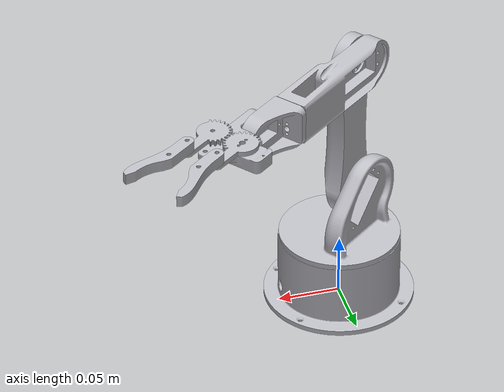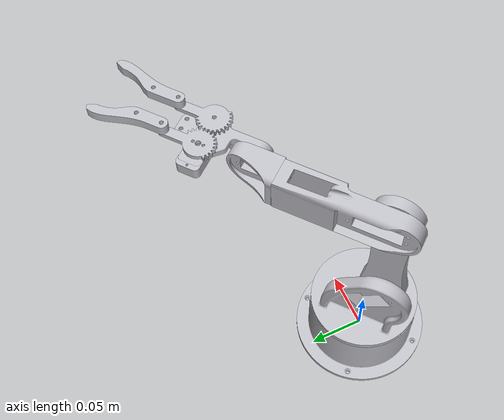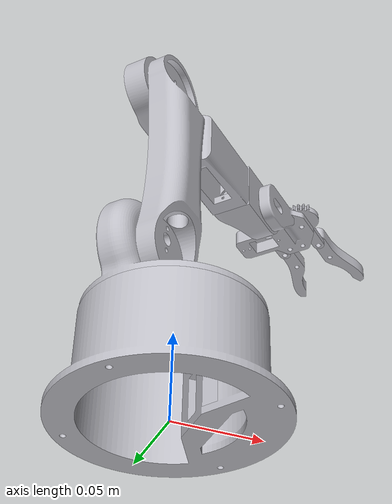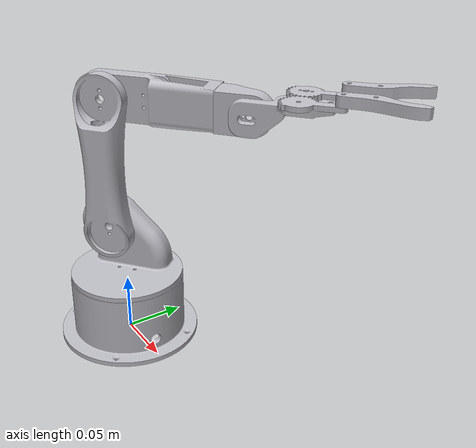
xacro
<?xml version="1.0"?>
<robot xmlns:xacro="http://www.ros.org/wiki/xacro" name="Robotic">
    <xacro:arg name="initial_positions_file" default="initial_positions.yaml" />

    <!-- Import Robotic urdf file -->
    <xacro:include filename="$(find Robotic_description)/urdf/Robotic.xacro" />

    <!-- Import control_xacro -->
    <xacro:include filename="Robotic.ros2_control.xacro" />

    <xacro:Robotic_ros2_control name="FakeSystem" initial_positions_file="$(arg initial_positions_file)"/>

</robot>

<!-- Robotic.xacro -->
<robot name="Robotic" xmlns:xacro="http://www.ros.org/wiki/xacro">

  <xacro:include filename="$(find Robotic_description)/urdf/materials.xacro" />
  <xacro:include filename="$(find Robotic_description)/urdf/Robotic.ros2control" />
  <xacro:include filename="$(find Robotic_description)/urdf/Robotic.gazebo" />

  <!-- ================= BASE ================= -->

  <link name="base_link">
    <inertial>
      <origin xyz="0.00019608322687622598 4.7129774473542457e-17 0.022210240717664115" rpy="0 0 0"/>
      <mass value="0.7043648518485409"/>
      <inertia ixx="0.000939" iyy="0.001008" izz="0.001523" ixy="0.0" iyz="0.0" ixz="3e-05"/>
    </inertial>

    <visual>
      <origin xyz="0 0 0" rpy="0 0 0"/>
      <geometry>
        <mesh filename="file://$(find Robotic_description)/meshes/base_link.stl"
              scale="0.001 0.001 0.001"/>
      </geometry>
      <material name="silver"/>
    </visual>

    <collision>
      <origin xyz="0 0 0" rpy="0 0 0"/>
      <geometry>
        <mesh filename="file://$(find Robotic_description)/meshes/base_link.stl"
              scale="0.001 0.001 0.001"/>
      </geometry>
    </collision>
  </link>

  <!-- ================= WAIST ================= -->

  <link name="waist_link__1">
    <inertial>
      <origin xyz="-0.008232942462193962 0.002680368030724079 0.01863951167643068" rpy="0 0 0"/>
      <mass value="0.5291367202831168"/>
      <inertia ixx="0.000393" iyy="0.000443" izz="0.000438"
               ixy="-6.2e-05" iyz="8e-06" ixz="8.1e-05"/>
    </inertial>

    <visual>
      <origin xyz="-0.0 -0.0 -0.056" rpy="0 0 0"/>
      <geometry>
        <mesh filename="file://$(find Robotic_description)/meshes/waist_link__1.stl"
              scale="0.001 0.001 0.001"/>
      </geometry>
      <material name="silver"/>
    </visual>

    <collision>
      <origin xyz="-0.0 -0.0 -0.056" rpy="0 0 0"/>
      <geometry>
        <mesh filename="file://$(find Robotic_description)/meshes/waist_link__1.stl"
              scale="0.001 0.001 0.001"/>
      </geometry>
    </collision>
  </link>

  <!-- ================= SHOULDER ================= -->

  <link name="shoulder_link_1">
    <inertial>
      <origin xyz="0.004976182562488834 -0.006174852032409734 0.05286353505809295" rpy="0 0 0"/>
      <mass value="0.4764598948036751"/>
      <inertia ixx="0.000787" iyy="0.000795" izz="7e-05"
               ixy="-1.8e-05" iyz="-0.0" ixz="0.0"/>
    </inertial>

    <visual>
      <origin xyz="0.013341 0.005613 -0.10028" rpy="0 0 0"/>
      <geometry>
        <mesh filename="file://$(find Robotic_description)/meshes/shoulder_link_1.stl"
              scale="0.001 0.001 0.001"/>
      </geometry>
      <material name="silver"/>
    </visual>

    <collision>
      <origin xyz="0.013341 0.005613 -0.10028" rpy="0 0 0"/>
      <geometry>
        <mesh filename="file://$(find Robotic_description)/meshes/shoulder_link_1.stl"
              scale="0.001 0.001 0.001"/>
      </geometry>
    </collision>
  </link>

  <!-- ================= ELBOW ================= -->

  <link name="elbow_link_1">
    <inertial>
      <origin xyz="0.03123491762487425 0.03246565125111838 2.8290162693428433e-05" rpy="0 0 0"/>
      <mass value="0.3793018917487677"/>
      <inertia ixx="0.000216" iyy="0.000302" izz="0.000423"
               ixy="-0.000185" iyz="-0.0" ixz="-0.0"/>
    </inertial>

    <visual>
      <origin xyz="0.013341 0.005613 -0.21303" rpy="0 0 0"/>
      <geometry>
        <mesh filename="file://$(find Robotic_description)/meshes/elbow_link_1.stl"
              scale="0.001 0.001 0.001"/>
      </geometry>
      <material name="silver"/>
    </visual>

    <collision>
      <origin xyz="0.013341 0.005613 -0.21303" rpy="0 0 0"/>
      <geometry>
        <mesh filename="file://$(find Robotic_description)/meshes/elbow_link_1.stl"
              scale="0.001 0.001 0.001"/>
      </geometry>
    </collision>
  </link>

  <!-- ================= WRIST ROLL ================= -->

  <link name="wrist_roll_link_1">
    <inertial>
      <origin xyz="0.01723922000105483 0.006875273485043666 0.005029953172644069"
              rpy="0 0 0"/>
      <mass value="0.11809299128853043"/>
      <inertia ixx="2.1e-05" iyy="3.3e-05" izz="2.8e-05"
               ixy="-8e-06" iyz="0.0" ixz="0.0"/>
    </inertial>

    <visual>
      <origin xyz="-0.056985 -0.058121 -0.20773" rpy="0 0 0"/>
      <geometry>
        <mesh filename="file://$(find Robotic_description)/meshes/wrist_roll_link_1.stl"
              scale="0.001 0.001 0.001"/>
      </geometry>
      <material name="silver"/>
    </visual>

    <collision>
      <origin xyz="-0.056985 -0.058121 -0.20773" rpy="0 0 0"/>
      <geometry>
        <mesh filename="file://$(find Robotic_description)/meshes/wrist_roll_link_1.stl"
              scale="0.001 0.001 0.001"/>
      </geometry>
    </collision>
  </link>

  <!-- ================= WRIST PITCH ================= -->

  <link name="wrist_pitch_link_1">
    <inertial>
      <origin xyz="0.01679443820323824 0.02030656843440662 0.006660009250878979"
              rpy="0 0 0"/>
      <mass value="0.12525982922438417"/>
      <inertia ixx="5.3e-05" iyy="3e-05" izz="7.1e-05"
               ixy="-1.6e-05" iyz="-9e-06" ixz="-6e-06"/>
    </inertial>

    <visual>
      <origin xyz="-0.087581 -0.064777 -0.212687" rpy="0 0 0"/>
      <geometry>
        <mesh filename="file://$(find Robotic_description)/meshes/wrist_pitch_link_1.stl"
              scale="0.001 0.001 0.001"/>
      </geometry>
      <material name="silver"/>
    </visual>

    <collision>
      <origin xyz="-0.087581 -0.064777 -0.212687" rpy="0 0 0"/>
      <geometry>
        <mesh filename="file://$(find Robotic_description)/meshes/wrist_pitch_link_1.stl"
              scale="0.001 0.001 0.001"/>
      </geometry>
    </collision>
  </link>

  <!-- ================= GRIPPER GEARS ================= -->

  <link name="Gear_2_1">
    <inertial>
      <origin xyz="0.004437435030473488 0.0029624223682456208 0.0020119756579396186"
              rpy="0 0 0"/>
      <mass value="0.01905515286062187"/>
      <inertia ixx="2e-06" iyy="2e-06" izz="3e-06"
               ixy="-1e-06" iyz="-0.0" ixz="-0.0"/>
    </inertial>

    <visual>
      <origin xyz="-0.105938 -0.102503 -0.226836" rpy="0 0 0"/>
      <geometry>
        <mesh filename="file://$(find Robotic_description)/meshes/Gear_2_1.stl"
              scale="0.001 0.001 0.001"/>
      </geometry>
      <material name="silver"/>
    </visual>

    <collision>
      <origin xyz="-0.105938 -0.102503 -0.226836" rpy="0 0 0"/>
      <geometry>
        <mesh filename="file://$(find Robotic_description)/meshes/Gear_2_1.stl"
              scale="0.001 0.001 0.001"/>
      </geometry>
    </collision>
  </link>

  <link name="Gear_1_1">
    <inertial>
      <origin xyz="0.0037364847012667096 0.0035914055213269597 0.0020145770194352763"
              rpy="0 0 0"/>
      <mass value="0.0196126693177059"/>
      <inertia ixx="1e-06" iyy="2e-06" izz="3e-06"
               ixy="-1e-06" iyz="-0.0" ixz="-0.0"/>
    </inertial>

    <visual>
      <origin xyz="-0.122817 -0.081557 -0.226753" rpy="0 0 0"/>
      <geometry>
        <mesh filename="file://$(find Robotic_description)/meshes/Gear_1_1.stl"
              scale="0.001 0.001 0.001"/>
      </geometry>
      <material name="silver"/>
    </visual>

    <collision>
      <origin xyz="-0.122817 -0.081557 -0.226753" rpy="0 0 0"/>
      <geometry>
        <mesh filename="file://$(find Robotic_description)/meshes/Gear_1_1.stl"
              scale="0.001 0.001 0.001"/>
      </geometry>
    </collision>
  </link>

  <!-- ================= GRIPPER FINGERS ================= -->

  <link name="Gripper_1">
    <inertial>
      <origin xyz="0.017994221681372324 0.018928450602989394 0.004324492503805566"
              rpy="0 0 0"/>
      <mass value="0.03530789973538108"/>
      <inertia ixx="7e-06" iyy="5e-06" izz="1.1e-05"
               ixy="-5e-06" iyz="-0.0" ixz="-0.0"/>
    </inertial>

    <visual>
      <origin xyz="-0.129882 -0.121781 -0.230913" rpy="0 0 0"/>
      <geometry>
        <mesh filename="file://$(find Robotic_description)/meshes/Gripper_1.stl"
              scale="0.001 0.001 0.001"/>
      </geometry>
      <material name="silver"/>
    </visual>

    <collision>
      <origin xyz="-0.129882 -0.121781 -0.230913" rpy="0 0 0"/>
      <geometry>
        <mesh filename="file://$(find Robotic_description)/meshes/Gripper_1.stl"
              scale="0.001 0.001 0.001"/>
      </geometry>
    </collision>
  </link>

  <link name="Gripper_2">
    <inertial>
      <origin xyz="0.022337875155330533 0.013538571652472353 0.004303279940584742"
              rpy="0 0 0"/>
      <mass value="0.03530789973538108"/>
      <inertia ixx="3e-06" iyy="9e-06" izz="1.1e-05"
               ixy="-4e-06" iyz="-0.0" ixz="-0.0"/>
    </inertial>

    <visual>
      <origin xyz="-0.14676 -0.100836 -0.23083" rpy="0 0 0"/>
      <geometry>
        <mesh filename="file://$(find Robotic_description)/meshes/Gripper_2.stl"
              scale="0.001 0.001 0.001"/>
      </geometry>
      <material name="silver"/>
    </visual>

    <collision>
      <origin xyz="-0.14676 -0.100836 -0.23083" rpy="0 0 0"/>
      <geometry>
        <mesh filename="file://$(find Robotic_description)/meshes/Gripper_2.stl"
              scale="0.001 0.001 0.001"/>
      </geometry>
    </collision>
  </link>

  <!-- ================= JOINTS ================= -->

  <!-- Base -->
  <joint name="base_joint" type="revolute">
    <origin xyz="0.0 0.0 0.056" rpy="0 0 0"/>
    <parent link="base_link"/>
    <child link="waist_link__1"/>
    <axis xyz="0.0 0.0 1.0"/>
    <limit lower="-3.14159" upper="3.14159"
           effort="10.0" velocity="1.0"/>
  </joint>

  <!-- Shoulder -->
  <joint name="shoulder_joint" type="revolute">
    <origin xyz="-0.013341 -0.005613 0.04428" rpy="0 0 0"/>
    <parent link="waist_link__1"/>
    <child link="shoulder_link_1"/>
    <axis xyz="-0.627463 0.778646 0.0"/>
    <limit lower="-1.5708" upper="1.5708"
           effort="10.0" velocity="1.0"/>
  </joint>

  <!-- Elbow -->
  <joint name="elbow_joint" type="revolute">
    <origin xyz="0.0 0.0 0.11275" rpy="0 0 0"/>
    <parent link="shoulder_link_1"/>
    <child link="elbow_link_1"/>
    <axis xyz="0.627463 -0.778646 -0.0"/>
    <limit lower="-1.200" upper="2.356194"
           effort="10.0" velocity="1.0"/>
  </joint>

  <!-- Wrist Roll -->
  <joint name="wrist_roll_joint" type="revolute">
    <origin xyz="0.070326 0.063734 -0.0053" rpy="0 0 0"/>
    <parent link="elbow_link_1"/>
    <child link="wrist_roll_link_1"/>
    <axis xyz="0.778646 0.627463 -0.0"/>
    <limit lower="-3.14159" upper="3.14159"
           effort="10.0" velocity="1.0"/>
  </joint>

  <!-- ================= WRIST PITCH - INCREASED ================= -->

  <joint name="wrist_pitch_link" type="revolute">
    <origin xyz="0.030596 0.006656 0.004957" rpy="0 0 0"/>
    <parent link="wrist_roll_link_1"/>
    <child link="wrist_pitch_link_1"/>
    <axis xyz="-0.62746 0.778643 0.003081"/>

    <!-- -180° to +180° -->
    <limit lower="-3.14159"
           upper="3.14159"
           effort="10.0"
           velocity="1.0"/>
  </joint>

  <!-- ================= MAIN GRIPPER - INCREASED ================= -->

  <joint name="finger_gripper_joint" type="revolute">
    <origin xyz="0.018357 0.037726 0.014149" rpy="0 0 0"/>
    <parent link="wrist_pitch_link_1"/>
    <child link="Gear_2_1"/>
    <axis xyz="-0.0 -0.003957 0.999992"/>

    <!-- 0° to 90° -->
   <limit lower="0.0"
       upper="1.5708"
       effort="10.0"
       velocity="1.0"/>
  </joint>

  <!-- ================= MIMIC GRIPPER ================= -->

  <joint name="right_finger_joint" type="revolute">
    <origin xyz="0.035236 0.01678 0.014066" rpy="0 0 0"/>
    <parent link="wrist_pitch_link_1"/>
    <child link="Gear_1_1"/>
    <axis xyz="-0.0 -0.003957 0.999992"/>

    <!-- -90° to 0° -->
    <limit lower="-1.5708"
           upper="0.0"
           effort="10.0"
           velocity="1.0"/>

    <mimic joint="finger_gripper_joint"
           multiplier="-1.0"
           offset="0.0"/>
  </joint>

  <!-- ================= FIXED JOINTS ================= -->

  <joint name="Rigid 24" type="fixed">
    <origin xyz="0.023944 0.019278 0.004077" rpy="0 0 0"/>
    <parent link="Gear_2_1"/>
    <child link="Gripper_1"/>
  </joint>

  <joint name="Rigid 25" type="fixed">
    <origin xyz="0.023943 0.019279 0.004077" rpy="0 0 0"/>
    <parent link="Gear_1_1"/>
    <child link="Gripper_2"/>
  </joint>

</robot>

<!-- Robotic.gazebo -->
<robot name="Robotic" xmlns:xacro="http://www.ros.org/wiki/xacro" >

<xacro:property name="body_color" value="Gazebo/Silver" />

<gazebo reference="base_link">
  <material>${body_color}</material>
  <mu1>0.2</mu1>
  <mu2>0.2</mu2>
  <self_collide>true</self_collide>
  <gravity>true</gravity>
</gazebo>

<gazebo reference="waist_link__1">
  <material>${body_color}</material>
  <mu1>0.2</mu1>
  <mu2>0.2</mu2>
  <self_collide>true</self_collide>
</gazebo>

<gazebo reference="shoulder_link_1">
  <material>${body_color}</material>
  <mu1>0.2</mu1>
  <mu2>0.2</mu2>
  <self_collide>true</self_collide>
</gazebo>

<gazebo reference="elbow_link_1">
  <material>${body_color}</material>
  <mu1>0.2</mu1>
  <mu2>0.2</mu2>
  <self_collide>true</self_collide>
</gazebo>

<gazebo reference="wrist_roll_link_1">
  <material>${body_color}</material>
  <mu1>0.2</mu1>
  <mu2>0.2</mu2>
  <self_collide>true</self_collide>
</gazebo>

<gazebo reference="Gear_2_1">
  <material>${body_color}</material>
  <mu1>0.2</mu1>
  <mu2>0.2</mu2>
  <self_collide>true</self_collide>
</gazebo>

<gazebo reference="Gear_1_1">
  <material>${body_color}</material>
  <mu1>0.2</mu1>
  <mu2>0.2</mu2>
  <self_collide>true</self_collide>
</gazebo>

<gazebo reference="Gripper_1">
  <material>${body_color}</material>
  <mu1>0.2</mu1>
  <mu2>0.2</mu2>
  <self_collide>true</self_collide>
</gazebo>

<gazebo reference="Gripper_2">
  <material>${body_color}</material>
  <mu1>0.2</mu1>
  <mu2>0.2</mu2>
  <self_collide>true</self_collide>
</gazebo>

<gazebo reference="wrist_pitch_link_1">
  <material>${body_color}</material>
  <mu1>0.2</mu1>
  <mu2>0.2</mu2>
  <self_collide>true</self_collide>
</gazebo>

</robot>
